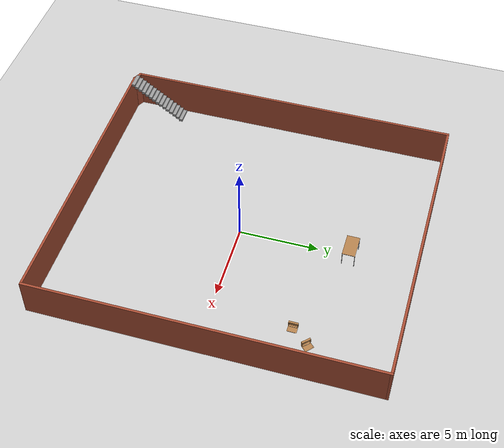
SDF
<sdf version="1.7">
 <world name="warehouse_world">
  <plugin name="gazebo_link_attacher" filename="libgazebo_link_attacher.so"/>
  <physics type="ode">
   <max_step_size>0.001</max_step_size>
   <real_time_factor>1</real_time_factor>
   <real_time_update_rate>1000</real_time_update_rate>
  </physics>
  <light name="sun" type="directional">
   <pose>0 0 10 0 -0 0</pose>
   <diffuse>0.8 0.8 0.8 1</diffuse>
   <specular>0.2 0.2 0.2 1</specular>
   <attenuation>
    <range>1000</range>
    <constant>0.9</constant>
    <linear>0.01</linear>
    <quadratic>0.001</quadratic>
   </attenuation>
   <direction>-0.5 0.1 -0.9</direction>
   <spot><inner_angle>0</inner_angle><outer_angle>0</outer_angle><falloff>0</falloff></spot>
  </light>
  <model name="ground_plane">
   <static>1</static>
   <link name="link">
    <collision name="collision">
     <geometry><plane><normal>0 0 1</normal><size>100 100</size></plane></geometry>
     <surface><friction><ode><mu>100</mu><mu2>50</mu2></ode></friction></surface>
    </collision>
    <visual name="visual">
     <cast_shadows>0</cast_shadows>
     <geometry><plane><normal>0 0 1</normal><size>100 100</size></plane></geometry>
     <material>
      <script><uri>file://media/materials/scripts/gazebo.material</uri><name>Gazebo/Grey</name></script>
     </material>
    </visual>
   </link>
  </model>
  <model name="workstation">
   <static>1</static>
   <link name="link">
    <collision name="surface">
     <pose>0 0 1 0 -0 0</pose>
     <geometry><box><size>1.5 0.8 0.03</size></box></geometry>
     <surface><friction><ode><mu>0.6</mu><mu2>0.6</mu2></ode></friction></surface>
    </collision>
    <visual name="visual1">
     <pose>0 0 1 0 -0 0</pose>
     <geometry><box><size>1.5 0.8 0.03</size></box></geometry>
     <material>
      <script><uri>file://media/materials/scripts/gazebo.material</uri><name>Gazebo/Wood</name></script>
     </material>
    </visual>
    <collision name="front_left_leg">
     <pose>0.68 0.38 0.5 0 -0 0</pose>
     <geometry><cylinder><radius>0.02</radius><length>1</length></cylinder></geometry>
    </collision>
    <visual name="front_left_leg">
     <pose>0.68 0.38 0.5 0 -0 0</pose>
     <geometry><cylinder><radius>0.02</radius><length>1</length></cylinder></geometry>
     <material>
      <script><uri>file://media/materials/scripts/gazebo.material</uri><name>Gazebo/Grey</name></script>
     </material>
    </visual>
    <collision name="front_right_leg">
     <pose>0.68 -0.38 0.5 0 -0 0</pose>
     <geometry><cylinder><radius>0.02</radius><length>1</length></cylinder></geometry>
    </collision>
    <visual name="front_right_leg">
     <pose>0.68 -0.38 0.5 0 -0 0</pose>
     <geometry><cylinder><radius>0.02</radius><length>1</length></cylinder></geometry>
     <material>
      <script><uri>file://media/materials/scripts/gazebo.material</uri><name>Gazebo/Grey</name></script>
     </material>
    </visual>
    <collision name="back_right_leg">
     <pose>-0.68 -0.38 0.5 0 -0 0</pose>
     <geometry><cylinder><radius>0.02</radius><length>1</length></cylinder></geometry>
    </collision>
    <visual name="back_right_leg">
     <pose>-0.68 -0.38 0.5 0 -0 0</pose>
     <geometry><cylinder><radius>0.02</radius><length>1</length></cylinder></geometry>
     <material>
      <script><uri>file://media/materials/scripts/gazebo.material</uri><name>Gazebo/Grey</name></script>
     </material>
    </visual>
    <collision name="back_left_leg">
     <pose>-0.68 0.38 0.5 0 -0 0</pose>
     <geometry><cylinder><radius>0.02</radius><length>1</length></cylinder></geometry>
    </collision>
    <visual name="back_left_leg">
     <pose>-0.68 0.38 0.5 0 -0 0</pose>
     <geometry><cylinder><radius>0.02</radius><length>1</length></cylinder></geometry>
     <material>
      <script><uri>file://media/materials/scripts/gazebo.material</uri><name>Gazebo/Grey</name></script>
     </material>
    </visual>
   </link>
   <pose>0 7 0 0 -0 0</pose>
  </model>
  <model name="case1">
   <link name="base">
    <pose>0 0 0.024 0 -0 0</pose>
    <inertial>
     <pose>-0.022184 0 0.171592 0 -0 0</pose>
     <mass>3.96264</mass>
     <inertia>
      <ixx>0.213536</ixx>
      <ixy>0</ixy>
      <ixz>0.000779377</ixz>
      <iyy>0.0708943</iyy>
      <iyz>0</iyz>
      <izz>0.154604</izz>
     </inertia>
    </inertial>
    <collision name="collision_back">
     <pose>-0.053975 0 0.1778 0 -0 0</pose>
     <geometry><box><size>0.01905 0.5461 0.3175</size></box></geometry>
     <surface>
      <contact>
       <poissons_ratio>0.347</poissons_ratio>
       <elastic_modulus>8.8e+09</elastic_modulus>
       <ode><kp>100000</kp><kd>100</kd><max_vel>100</max_vel><min_depth>0.001</min_depth></ode>
      </contact>
      <friction>
       <torsional>
        <coefficient>1</coefficient>
        <use_patch_radius>0</use_patch_radius>
        <surface_radius>0.01</surface_radius>
       </torsional>
      </friction>
     </surface>
    </collision>
    <visual name="visual_back">
     <pose>-0.053975 0 0.1778 0 -0 0</pose>
     <geometry><box><size>0.01905 0.5461 0.3175</size></box></geometry>
     <material>
      <script><uri>file://media/materials/scripts/gazebo.material</uri><name>Gazebo/Wood</name></script>
     </material>
    </visual>
    <collision name="collision_bottom">
     <pose>0 0 0.009525 0 -0 0</pose>
     <geometry><box><size>0.127 0.5842 0.01905</size></box></geometry>
     <surface>
      <contact>
       <poissons_ratio>0.347</poissons_ratio>
       <elastic_modulus>8.8e+09</elastic_modulus>
       <ode><kp>100000</kp><kd>100</kd><max_vel>100</max_vel><min_depth>0.001</min_depth></ode>
      </contact>
      <friction>
       <torsional>
        <coefficient>1</coefficient>
        <use_patch_radius>0</use_patch_radius>
        <surface_radius>0.01</surface_radius>
       </torsional>
      </friction>
     </surface>
    </collision>
    <visual name="visual_bottom">
     <pose>0 0 0.009525 0 -0 0</pose>
     <geometry><box><size>0.127 0.5842 0.01905</size></box></geometry>
     <material>
      <script><uri>file://media/materials/scripts/gazebo.material</uri><name>Gazebo/Wood</name></script>
     </material>
    </visual>
    <collision name="collision_top">
     <pose>0 0 0.346075 0 -0 0</pose>
     <geometry><box><size>0.127 0.5842 0.01905</size></box></geometry>
     <surface>
      <contact>
       <poissons_ratio>0.347</poissons_ratio>
       <elastic_modulus>8.8e+09</elastic_modulus>
       <ode><kp>100000</kp><kd>100</kd><max_vel>100</max_vel><min_depth>0.001</min_depth></ode>
      </contact>
      <friction>
       <torsional>
        <coefficient>1</coefficient>
        <use_patch_radius>0</use_patch_radius>
        <surface_radius>0.01</surface_radius>
       </torsional>
      </friction>
     </surface>
    </collision>
    <visual name="visual_top">
     <pose>0 0 0.346075 0 -0 0</pose>
     <geometry><box><size>0.127 0.5842 0.01905</size></box></geometry>
     <material>
      <script><uri>file://media/materials/scripts/gazebo.material</uri><name>Gazebo/Wood</name></script>
     </material>
    </visual>
    <collision name="collision_left">
     <pose>0 -0.282575 0.1778 0 -0 0</pose>
     <geometry><box><size>0.127 0.01905 0.3175</size></box></geometry>
     <surface>
      <contact>
       <poissons_ratio>0.347</poissons_ratio>
       <elastic_modulus>8.8e+09</elastic_modulus>
       <ode><kp>100000</kp><kd>100</kd><max_vel>100</max_vel><min_depth>0.001</min_depth></ode>
      </contact>
      <friction>
       <torsional>
        <coefficient>1</coefficient>
        <use_patch_radius>0</use_patch_radius>
        <surface_radius>0.01</surface_radius>
       </torsional>
      </friction>
     </surface>
    </collision>
    <visual name="visual_left">
     <pose>0 -0.282575 0.1778 0 -0 0</pose>
     <geometry><box><size>0.127 0.01905 0.3175</size></box></geometry>
     <material>
      <script><uri>file://media/materials/scripts/gazebo.material</uri><name>Gazebo/Wood</name></script>
     </material>
    </visual>
    <collision name="collision_right">
     <pose>0 0.282575 0.1778 0 -0 0</pose>
     <geometry><box><size>0.127 0.01905 0.3175</size></box></geometry>
     <surface>
      <contact>
       <poissons_ratio>0.347</poissons_ratio>
       <elastic_modulus>8.8e+09</elastic_modulus>
       <ode><kp>100000</kp><kd>100</kd><max_vel>100</max_vel><min_depth>0.001</min_depth></ode>
      </contact>
      <friction>
       <torsional>
        <coefficient>1</coefficient>
        <use_patch_radius>0</use_patch_radius>
        <surface_radius>0.01</surface_radius>
       </torsional>
      </friction>
     </surface>
    </collision>
    <visual name="visual_right">
     <pose>0 0.282575 0.1778 0 -0 0</pose>
     <geometry><box><size>0.127 0.01905 0.3175</size></box></geometry>
     <material>
      <script><uri>file://media/materials/scripts/gazebo.material</uri><name>Gazebo/Wood</name></script>
     </material>
    </visual>
    <collision name="collision_block_left">
     <pose>0.0095 -0.2151 -0.012 0 -0 0</pose>
     <geometry><box><size>0.108 0.05 0.024</size></box></geometry>
     <surface>
      <contact>
       <poissons_ratio>0.347</poissons_ratio>
       <elastic_modulus>8.8e+09</elastic_modulus>
       <ode><kp>100000</kp><kd>100</kd><max_vel>100</max_vel><min_depth>0.001</min_depth></ode>
      </contact>
      <friction>
       <torsional>
        <coefficient>1</coefficient>
        <use_patch_radius>0</use_patch_radius>
        <surface_radius>0.01</surface_radius>
       </torsional>
      </friction>
     </surface>
    </collision>
    <visual name="visual_block_left">
     <pose>0.0095 -0.2151 -0.012 0 -0 0</pose>
     <geometry><box><size>0.108 0.05 0.024</size></box></geometry>
     <material>
      <script><uri>file://media/materials/scripts/gazebo.material</uri><name>Gazebo/Wood</name></script>
     </material>
    </visual>
    <collision name="collision_block_right">
     <pose>0.0095 0.2151 -0.012 0 -0 0</pose>
     <geometry><box><size>0.108 0.05 0.024</size></box></geometry>
     <surface>
      <contact>
       <poissons_ratio>0.347</poissons_ratio>
       <elastic_modulus>8.8e+09</elastic_modulus>
       <ode><kp>100000</kp><kd>100</kd><max_vel>100</max_vel><min_depth>0.001</min_depth></ode>
      </contact>
      <friction>
       <torsional>
        <coefficient>1</coefficient>
        <use_patch_radius>0</use_patch_radius>
        <surface_radius>0.01</surface_radius>
       </torsional>
      </friction>
     </surface>
    </collision>
    <visual name="visual_block_right">
     <pose>0.0095 0.2151 -0.012 0 -0 0</pose>
     <geometry><box><size>0.108 0.05 0.024</size></box></geometry>
     <material>
      <script><uri>file://media/materials/scripts/gazebo.material</uri><name>Gazebo/Wood</name></script>
     </material>
    </visual>
   </link>
   <link name="lid">
    <pose>0.243775 0 0.009525 0 -0 0</pose>
    <inertial>
     <mass>1.97874</mass>
     <inertia>
      <ixx>0.0563367</ixx>
      <ixy>0</ixy>
      <ixz>0</ixz>
      <iyy>0.020911</iyy>
      <iyz>0</iyz>
      <izz>0.0771281</izz>
     </inertia>
    </inertial>
    <collision name="collision">
     <geometry><box><size>0.3556 0.5842 0.01905</size></box></geometry>
     <surface>
      <contact>
       <poissons_ratio>0.347</poissons_ratio>
       <elastic_modulus>8.8e+09</elastic_modulus>
       <ode><kp>100000</kp><kd>100</kd><max_vel>100</max_vel><min_depth>0.001</min_depth></ode>
      </contact>
      <friction>
       <torsional>
        <coefficient>1</coefficient>
        <use_patch_radius>0</use_patch_radius>
        <surface_radius>0.01</surface_radius>
       </torsional>
      </friction>
     </surface>
    </collision>
    <visual name="visual">
     <geometry><box><size>0.3556 0.5842 0.01905</size></box></geometry>
     <material>
      <script><uri>file://media/materials/scripts/gazebo.material</uri><name>Gazebo/Wood</name></script>
     </material>
    </visual>
    <visual name="tee_nut_1">
     <pose>0.122 -0.216 0 0 -0 0</pose>
     <geometry><cylinder><radius>0.00635</radius><length>0.0192405</length></cylinder></geometry>
     <material>
      <script><uri>file://media/materials/scripts/gazebo.material</uri><name>Gazebo/Grey</name></script>
     </material>
    </visual>
    <visual name="tee_nut_2">
     <pose>0.122 -0.088 0 0 -0 0</pose>
     <geometry><cylinder><radius>0.00635</radius><length>0.0192405</length></cylinder></geometry>
     <material>
      <script><uri>file://media/materials/scripts/gazebo.material</uri><name>Gazebo/Grey</name></script>
     </material>
    </visual>
    <visual name="tee_nut_3">
     <pose>0.122 0.088 0 0 -0 0</pose>
     <geometry><cylinder><radius>0.00635</radius><length>0.0192405</length></cylinder></geometry>
     <material>
      <script><uri>file://media/materials/scripts/gazebo.material</uri><name>Gazebo/Grey</name></script>
     </material>
    </visual>
    <visual name="tee_nut_4">
     <pose>0.122 0.216 0 0 -0 0</pose>
     <geometry><cylinder><radius>0.00635</radius><length>0.0192405</length></cylinder></geometry>
     <material>
      <script><uri>file://media/materials/scripts/gazebo.material</uri><name>Gazebo/Grey</name></script>
     </material>
    </visual>
   </link>
   <joint name="lid_hinge" type="revolute">
    <pose>-0.1778 0 0.01905 0 -0 0</pose>
    <parent>base</parent>
    <child>lid</child>
    <axis>
     <xyz>0 1 0</xyz>
     <limit><upper>0.523599</upper><lower>-1.5708</lower></limit>
     <dynamics><spring_reference>0</spring_reference><spring_stiffness>0</spring_stiffness></dynamics>
    </axis>
   </joint>
   <pose>6 5 -0.001057 0 -0.000429 0</pose>
  </model>
  <model name="case2">
   <link name="base">
    <pose>0 0 0.024 0 -0 0</pose>
    <inertial>
     <pose>-0.022184 0 0.171592 0 -0 0</pose>
     <mass>3.96264</mass>
     <inertia>
      <ixx>0.213536</ixx>
      <ixy>0</ixy>
      <ixz>0.000779377</ixz>
      <iyy>0.0708943</iyy>
      <iyz>0</iyz>
      <izz>0.154604</izz>
     </inertia>
    </inertial>
    <collision name="collision_back">
     <pose>-0.053975 0 0.1778 0 -0 0</pose>
     <geometry><box><size>0.01905 0.5461 0.3175</size></box></geometry>
     <surface>
      <contact>
       <poissons_ratio>0.347</poissons_ratio>
       <elastic_modulus>8.8e+09</elastic_modulus>
       <ode><kp>100000</kp><kd>100</kd><max_vel>100</max_vel><min_depth>0.001</min_depth></ode>
      </contact>
      <friction>
       <torsional>
        <coefficient>1</coefficient>
        <use_patch_radius>0</use_patch_radius>
        <surface_radius>0.01</surface_radius>
       </torsional>
      </friction>
     </surface>
    </collision>
    <visual name="visual_back">
     <pose>-0.053975 0 0.1778 0 -0 0</pose>
     <geometry><box><size>0.01905 0.5461 0.3175</size></box></geometry>
     <material>
      <script><uri>file://media/materials/scripts/gazebo.material</uri><name>Gazebo/Wood</name></script>
     </material>
    </visual>
    <collision name="collision_bottom">
     <pose>0 0 0.009525 0 -0 0</pose>
     <geometry><box><size>0.127 0.5842 0.01905</size></box></geometry>
     <surface>
      <contact>
       <poissons_ratio>0.347</poissons_ratio>
       <elastic_modulus>8.8e+09</elastic_modulus>
       <ode><kp>100000</kp><kd>100</kd><max_vel>100</max_vel><min_depth>0.001</min_depth></ode>
      </contact>
      <friction>
       <torsional>
        <coefficient>1</coefficient>
        <use_patch_radius>0</use_patch_radius>
        <surface_radius>0.01</surface_radius>
       </torsional>
      </friction>
     </surface>
    </collision>
    <visual name="visual_bottom">
     <pose>0 0 0.009525 0 -0 0</pose>
     <geometry><box><size>0.127 0.5842 0.01905</size></box></geometry>
     <material>
      <script><uri>file://media/materials/scripts/gazebo.material</uri><name>Gazebo/Wood</name></script>
     </material>
    </visual>
    <collision name="collision_top">
     <pose>0 0 0.346075 0 -0 0</pose>
     <geometry><box><size>0.127 0.5842 0.01905</size></box></geometry>
     <surface>
      <contact>
       <poissons_ratio>0.347</poissons_ratio>
       <elastic_modulus>8.8e+09</elastic_modulus>
       <ode><kp>100000</kp><kd>100</kd><max_vel>100</max_vel><min_depth>0.001</min_depth></ode>
      </contact>
      <friction>
       <torsional>
        <coefficient>1</coefficient>
        <use_patch_radius>0</use_patch_radius>
        <surface_radius>0.01</surface_radius>
       </torsional>
      </friction>
     </surface>
    </collision>
    <visual name="visual_top">
     <pose>0 0 0.346075 0 -0 0</pose>
     <geometry><box><size>0.127 0.5842 0.01905</size></box></geometry>
     <material>
      <script><uri>file://media/materials/scripts/gazebo.material</uri><name>Gazebo/Wood</name></script>
     </material>
    </visual>
    <collision name="collision_left">
     <pose>0 -0.282575 0.1778 0 -0 0</pose>
     <geometry><box><size>0.127 0.01905 0.3175</size></box></geometry>
     <surface>
      <contact>
       <poissons_ratio>0.347</poissons_ratio>
       <elastic_modulus>8.8e+09</elastic_modulus>
       <ode><kp>100000</kp><kd>100</kd><max_vel>100</max_vel><min_depth>0.001</min_depth></ode>
      </contact>
      <friction>
       <torsional>
        <coefficient>1</coefficient>
        <use_patch_radius>0</use_patch_radius>
        <surface_radius>0.01</surface_radius>
       </torsional>
      </friction>
     </surface>
    </collision>
    <visual name="visual_left">
     <pose>0 -0.282575 0.1778 0 -0 0</pose>
     <geometry><box><size>0.127 0.01905 0.3175</size></box></geometry>
     <material>
      <script><uri>file://media/materials/scripts/gazebo.material</uri><name>Gazebo/Wood</name></script>
     </material>
    </visual>
    <collision name="collision_right">
     <pose>0 0.282575 0.1778 0 -0 0</pose>
     <geometry><box><size>0.127 0.01905 0.3175</size></box></geometry>
     <surface>
      <contact>
       <poissons_ratio>0.347</poissons_ratio>
       <elastic_modulus>8.8e+09</elastic_modulus>
       <ode><kp>100000</kp><kd>100</kd><max_vel>100</max_vel><min_depth>0.001</min_depth></ode>
      </contact>
      <friction>
       <torsional>
        <coefficient>1</coefficient>
        <use_patch_radius>0</use_patch_radius>
        <surface_radius>0.01</surface_radius>
       </torsional>
      </friction>
     </surface>
    </collision>
    <visual name="visual_right">
     <pose>0 0.282575 0.1778 0 -0 0</pose>
     <geometry><box><size>0.127 0.01905 0.3175</size></box></geometry>
     <material>
      <script><uri>file://media/materials/scripts/gazebo.material</uri><name>Gazebo/Wood</name></script>
     </material>
    </visual>
    <collision name="collision_block_left">
     <pose>0.0095 -0.2151 -0.012 0 -0 0</pose>
     <geometry><box><size>0.108 0.05 0.024</size></box></geometry>
     <surface>
      <contact>
       <poissons_ratio>0.347</poissons_ratio>
       <elastic_modulus>8.8e+09</elastic_modulus>
       <ode><kp>100000</kp><kd>100</kd><max_vel>100</max_vel><min_depth>0.001</min_depth></ode>
      </contact>
      <friction>
       <torsional>
        <coefficient>1</coefficient>
        <use_patch_radius>0</use_patch_radius>
        <surface_radius>0.01</surface_radius>
       </torsional>
      </friction>
     </surface>
    </collision>
    <visual name="visual_block_left">
     <pose>0.0095 -0.2151 -0.012 0 -0 0</pose>
     <geometry><box><size>0.108 0.05 0.024</size></box></geometry>
     <material>
      <script><uri>file://media/materials/scripts/gazebo.material</uri><name>Gazebo/Wood</name></script>
     </material>
    </visual>
    <collision name="collision_block_right">
     <pose>0.0095 0.2151 -0.012 0 -0 0</pose>
     <geometry><box><size>0.108 0.05 0.024</size></box></geometry>
     <surface>
      <contact>
       <poissons_ratio>0.347</poissons_ratio>
       <elastic_modulus>8.8e+09</elastic_modulus>
       <ode><kp>100000</kp><kd>100</kd><max_vel>100</max_vel><min_depth>0.001</min_depth></ode>
      </contact>
      <friction>
       <torsional>
        <coefficient>1</coefficient>
        <use_patch_radius>0</use_patch_radius>
        <surface_radius>0.01</surface_radius>
       </torsional>
      </friction>
     </surface>
    </collision>
    <visual name="visual_block_right">
     <pose>0.0095 0.2151 -0.012 0 -0 0</pose>
     <geometry><box><size>0.108 0.05 0.024</size></box></geometry>
     <material>
      <script><uri>file://media/materials/scripts/gazebo.material</uri><name>Gazebo/Wood</name></script>
     </material>
    </visual>
   </link>
   <link name="lid">
    <pose>0.243775 0 0.009525 0 -0 0</pose>
    <inertial>
     <mass>1.97874</mass>
     <inertia>
      <ixx>0.0563367</ixx>
      <ixy>0</ixy>
      <ixz>0</ixz>
      <iyy>0.020911</iyy>
      <iyz>0</iyz>
      <izz>0.0771281</izz>
     </inertia>
    </inertial>
    <collision name="collision">
     <geometry><box><size>0.3556 0.5842 0.01905</size></box></geometry>
     <surface>
      <contact>
       <poissons_ratio>0.347</poissons_ratio>
       <elastic_modulus>8.8e+09</elastic_modulus>
       <ode><kp>100000</kp><kd>100</kd><max_vel>100</max_vel><min_depth>0.001</min_depth></ode>
      </contact>
      <friction>
       <torsional>
        <coefficient>1</coefficient>
        <use_patch_radius>0</use_patch_radius>
        <surface_radius>0.01</surface_radius>
       </torsional>
      </friction>
     </surface>
    </collision>
    <visual name="visual">
     <geometry><box><size>0.3556 0.5842 0.01905</size></box></geometry>
     <material>
      <script><uri>file://media/materials/scripts/gazebo.material</uri><name>Gazebo/Wood</name></script>
     </material>
    </visual>
    <visual name="tee_nut_1">
     <pose>0.122 -0.216 0 0 -0 0</pose>
     <geometry><cylinder><radius>0.00635</radius><length>0.0192405</length></cylinder></geometry>
     <material>
      <script><uri>file://media/materials/scripts/gazebo.material</uri><name>Gazebo/Grey</name></script>
     </material>
    </visual>
    <visual name="tee_nut_2">
     <pose>0.122 -0.088 0 0 -0 0</pose>
     <geometry><cylinder><radius>0.00635</radius><length>0.0192405</length></cylinder></geometry>
     <material>
      <script><uri>file://media/materials/scripts/gazebo.material</uri><name>Gazebo/Grey</name></script>
     </material>
    </visual>
    <visual name="tee_nut_3">
     <pose>0.122 0.088 0 0 -0 0</pose>
     <geometry><cylinder><radius>0.00635</radius><length>0.0192405</length></cylinder></geometry>
     <material>
      <script><uri>file://media/materials/scripts/gazebo.material</uri><name>Gazebo/Grey</name></script>
     </material>
    </visual>
    <visual name="tee_nut_4">
     <pose>0.122 0.216 0 0 -0 0</pose>
     <geometry><cylinder><radius>0.00635</radius><length>0.0192405</length></cylinder></geometry>
     <material>
      <script><uri>file://media/materials/scripts/gazebo.material</uri><name>Gazebo/Grey</name></script>
     </material>
    </visual>
   </link>
   <joint name="lid_hinge" type="revolute">
    <pose>-0.1778 0 0.01905 0 -0 0</pose>
    <parent>base</parent>
    <child>lid</child>
    <axis>
     <xyz>0 1 0</xyz>
     <limit><upper>0.523599</upper><lower>-1.5708</lower></limit>
     <dynamics><spring_reference>0</spring_reference><spring_stiffness>0</spring_stiffness></dynamics>
    </axis>
   </joint>
   <pose>7 6 -0.001056 0 -0.000379 0.800001</pose>
  </model>
  <light name="warehouse_light1" type="point">
   <pose>-5 0 4 0 -0 0</pose>
   <diffuse>0.8 0.8 0.8 1</diffuse>
   <specular>0.2 0.2 0.2 1</specular>
   <attenuation>
    <range>20</range>
    <linear>0.01</linear>
    <constant>0.9</constant>
    <quadratic>0.001</quadratic>
   </attenuation>
   <direction>0 0 -1</direction>
   <spot><inner_angle>0</inner_angle><outer_angle>0</outer_angle><falloff>0</falloff></spot>
  </light>
  <light name="warehouse_light2" type="point">
   <pose>5 0 4 0 -0 0</pose>
   <diffuse>0.8 0.8 0.8 1</diffuse>
   <specular>0.2 0.2 0.2 1</specular>
   <attenuation>
    <range>20</range>
    <linear>0.01</linear>
    <constant>0.9</constant>
    <quadratic>0.001</quadratic>
   </attenuation>
   <direction>0 0 -1</direction>
   <spot><inner_angle>0</inner_angle><outer_angle>0</outer_angle><falloff>0</falloff></spot>
  </light>
  <scene><ambient>0.4 0.4 0.4 1</ambient><background>0.7 0.7 0.7 1</background><shadows>1</shadows></scene>
  <gravity>0 0 -9.8</gravity>
  <magnetic_field>6e-06 2.3e-05 -4.2e-05</magnetic_field>
  <atmosphere type="adiabatic"/>
  <audio><device>default</device></audio>
  <spherical_coordinates>
   <surface_model>EARTH_WGS84</surface_model>
   <latitude_deg>0</latitude_deg>
   <longitude_deg>0</longitude_deg>
   <elevation>0</elevation>
   <heading_deg>0</heading_deg>
  </spherical_coordinates>
  <model name="Untitled">
   <pose>-0.240199 0.446248 0 0 -0 0</pose>
   <link name="Stairs_0">
    <visual name="Stairs_0_Visual_0">
     <pose>-8.7142 -7.23135 0.083333 0 -0 0</pose>
     <geometry><box><size>1 0.233333 0.166667</size></box></geometry>
     <material>
      <script><uri>file://media/materials/scripts/gazebo.material</uri><name>Gazebo/Grey</name></script>
      <ambient>1 1 1 1</ambient>
     </material>
     <meta><layer>0</layer></meta>
    </visual>
    <collision name="Stairs_0_Collision_0">
     <geometry><box><size>1 0.233333 0.166667</size></box></geometry>
     <pose>-8.7142 -7.23135 0.083333 0 -0 0</pose>
    </collision>
    <visual name="Stairs_0_Visual_1">
     <pose>-8.7142 -7.46469 0.25 0 -0 0</pose>
     <geometry><box><size>1 0.233333 0.166667</size></box></geometry>
     <material>
      <script><uri>file://media/materials/scripts/gazebo.material</uri><name>Gazebo/Grey</name></script>
      <ambient>1 1 1 1</ambient>
     </material>
     <meta><layer>0</layer></meta>
    </visual>
    <collision name="Stairs_0_Collision_1">
     <geometry><box><size>1 0.233333 0.166667</size></box></geometry>
     <pose>-8.7142 -7.46469 0.25 0 -0 0</pose>
    </collision>
    <visual name="Stairs_0_Visual_2">
     <pose>-8.7142 -7.69802 0.416667 0 -0 0</pose>
     <geometry><box><size>1 0.233333 0.166667</size></box></geometry>
     <material>
      <script><uri>file://media/materials/scripts/gazebo.material</uri><name>Gazebo/Grey</name></script>
      <ambient>1 1 1 1</ambient>
     </material>
     <meta><layer>0</layer></meta>
    </visual>
    <collision name="Stairs_0_Collision_2">
     <geometry><box><size>1 0.233333 0.166667</size></box></geometry>
     <pose>-8.7142 -7.69802 0.416667 0 -0 0</pose>
    </collision>
    <visual name="Stairs_0_Visual_3">
     <pose>-8.7142 -7.93135 0.583333 0 -0 0</pose>
     <geometry><box><size>1 0.233333 0.166667</size></box></geometry>
     <material>
      <script><uri>file://media/materials/scripts/gazebo.material</uri><name>Gazebo/Grey</name></script>
      <ambient>1 1 1 1</ambient>
     </material>
     <meta><layer>0</layer></meta>
    </visual>
    <collision name="Stairs_0_Collision_3">
     <geometry><box><size>1 0.233333 0.166667</size></box></geometry>
     <pose>-8.7142 -7.93135 0.583333 0 -0 0</pose>
    </collision>
    <visual name="Stairs_0_Visual_4">
     <pose>-8.7142 -8.16469 0.75 0 -0 0</pose>
     <geometry><box><size>1 0.233333 0.166667</size></box></geometry>
     <material>
      <script><uri>file://media/materials/scripts/gazebo.material</uri><name>Gazebo/Grey</name></script>
      <ambient>1 1 1 1</ambient>
     </material>
     <meta><layer>0</layer></meta>
    </visual>
    <collision name="Stairs_0_Collision_4">
     <geometry><box><size>1 0.233333 0.166667</size></box></geometry>
     <pose>-8.7142 -8.16469 0.75 0 -0 0</pose>
    </collision>
    <visual name="Stairs_0_Visual_5">
     <pose>-8.7142 -8.39802 0.916667 0 -0 0</pose>
     <geometry><box><size>1 0.233333 0.166667</size></box></geometry>
     <material>
      <script><uri>file://media/materials/scripts/gazebo.material</uri><name>Gazebo/Grey</name></script>
      <ambient>1 1 1 1</ambient>
     </material>
     <meta><layer>0</layer></meta>
    </visual>
    <collision name="Stairs_0_Collision_5">
     <geometry><box><size>1 0.233333 0.166667</size></box></geometry>
     <pose>-8.7142 -8.39802 0.916667 0 -0 0</pose>
    </collision>
    <visual name="Stairs_0_Visual_6">
     <pose>-8.7142 -8.63135 1.08333 0 -0 0</pose>
     <geometry><box><size>1 0.233333 0.166667</size></box></geometry>
     <material>
      <script><uri>file://media/materials/scripts/gazebo.material</uri><name>Gazebo/Grey</name></script>
      <ambient>1 1 1 1</ambient>
     </material>
     <meta><layer>0</layer></meta>
    </visual>
    <collision name="Stairs_0_Collision_6">
     <geometry><box><size>1 0.233333 0.166667</size></box></geometry>
     <pose>-8.7142 -8.63135 1.08333 0 -0 0</pose>
    </collision>
    <visual name="Stairs_0_Visual_7">
     <pose>-8.7142 -8.86469 1.25 0 -0 0</pose>
     <geometry><box><size>1 0.233333 0.166667</size></box></geometry>
     <material>
      <script><uri>file://media/materials/scripts/gazebo.material</uri><name>Gazebo/Grey</name></script>
      <ambient>1 1 1 1</ambient>
     </material>
     <meta><layer>0</layer></meta>
    </visual>
    <collision name="Stairs_0_Collision_7">
     <geometry><box><size>1 0.233333 0.166667</size></box></geometry>
     <pose>-8.7142 -8.86469 1.25 0 -0 0</pose>
    </collision>
    <visual name="Stairs_0_Visual_8">
     <pose>-8.7142 -9.09802 1.41667 0 -0 0</pose>
     <geometry><box><size>1 0.233333 0.166667</size></box></geometry>
     <material>
      <script><uri>file://media/materials/scripts/gazebo.material</uri><name>Gazebo/Grey</name></script>
      <ambient>1 1 1 1</ambient>
     </material>
     <meta><layer>0</layer></meta>
    </visual>
    <collision name="Stairs_0_Collision_8">
     <geometry><box><size>1 0.233333 0.166667</size></box></geometry>
     <pose>-8.7142 -9.09802 1.41667 0 -0 0</pose>
    </collision>
    <visual name="Stairs_0_Visual_9">
     <pose>-8.7142 -9.33136 1.58333 0 -0 0</pose>
     <geometry><box><size>1 0.233333 0.166667</size></box></geometry>
     <material>
      <script><uri>file://media/materials/scripts/gazebo.material</uri><name>Gazebo/Grey</name></script>
      <ambient>1 1 1 1</ambient>
     </material>
     <meta><layer>0</layer></meta>
    </visual>
    <collision name="Stairs_0_Collision_9">
     <geometry><box><size>1 0.233333 0.166667</size></box></geometry>
     <pose>-8.7142 -9.33136 1.58333 0 -0 0</pose>
    </collision>
    <visual name="Stairs_0_Visual_10">
     <pose>-8.7142 -9.56469 1.75 0 -0 0</pose>
     <geometry><box><size>1 0.233333 0.166667</size></box></geometry>
     <material>
      <script><uri>file://media/materials/scripts/gazebo.material</uri><name>Gazebo/Grey</name></script>
      <ambient>1 1 1 1</ambient>
     </material>
     <meta><layer>0</layer></meta>
    </visual>
    <collision name="Stairs_0_Collision_10">
     <geometry><box><size>1 0.233333 0.166667</size></box></geometry>
     <pose>-8.7142 -9.56469 1.75 0 -0 0</pose>
    </collision>
    <visual name="Stairs_0_Visual_11">
     <pose>-8.7142 -9.79802 1.91667 0 -0 0</pose>
     <geometry><box><size>1 0.233333 0.166667</size></box></geometry>
     <material>
      <script><uri>file://media/materials/scripts/gazebo.material</uri><name>Gazebo/Grey</name></script>
      <ambient>1 1 1 1</ambient>
     </material>
     <meta><layer>0</layer></meta>
    </visual>
    <collision name="Stairs_0_Collision_11">
     <geometry><box><size>1 0.233333 0.166667</size></box></geometry>
     <pose>-8.7142 -9.79802 1.91667 0 -0 0</pose>
    </collision>
    <visual name="Stairs_0_Visual_12">
     <pose>-8.7142 -10.0314 2.08333 0 -0 0</pose>
     <geometry><box><size>1 0.233333 0.166667</size></box></geometry>
     <material>
      <script><uri>file://media/materials/scripts/gazebo.material</uri><name>Gazebo/Grey</name></script>
      <ambient>1 1 1 1</ambient>
     </material>
     <meta><layer>0</layer></meta>
    </visual>
    <collision name="Stairs_0_Collision_12">
     <geometry><box><size>1 0.233333 0.166667</size></box></geometry>
     <pose>-8.7142 -10.0314 2.08333 0 -0 0</pose>
    </collision>
    <visual name="Stairs_0_Visual_13">
     <pose>-8.7142 -10.2647 2.25 0 -0 0</pose>
     <geometry><box><size>1 0.233333 0.166667</size></box></geometry>
     <material>
      <script><uri>file://media/materials/scripts/gazebo.material</uri><name>Gazebo/Grey</name></script>
      <ambient>1 1 1 1</ambient>
     </material>
     <meta><layer>0</layer></meta>
    </visual>
    <collision name="Stairs_0_Collision_13">
     <geometry><box><size>1 0.233333 0.166667</size></box></geometry>
     <pose>-8.7142 -10.2647 2.25 0 -0 0</pose>
    </collision>
    <visual name="Stairs_0_Visual_14">
     <pose>-8.7142 -10.498 2.41667 0 -0 0</pose>
     <geometry><box><size>1 0.233333 0.166667</size></box></geometry>
     <material>
      <script><uri>file://media/materials/scripts/gazebo.material</uri><name>Gazebo/Grey</name></script>
      <ambient>1 1 1 1</ambient>
     </material>
     <meta><layer>0</layer></meta>
    </visual>
    <collision name="Stairs_0_Collision_14">
     <geometry><box><size>1 0.233333 0.166667</size></box></geometry>
     <pose>-8.7142 -10.498 2.41667 0 -0 0</pose>
    </collision>
   </link>
   <link name="Wall_10">
    <collision name="Wall_10_Collision">
     <geometry><box><size>19 0.15 2.5</size></box></geometry>
     <pose>0 0 1.25 0 -0 0</pose>
    </collision>
    <visual name="Wall_10_Visual">
     <pose>0 0 1.25 0 -0 0</pose>
     <geometry><box><size>19 0.15 2.5</size></box></geometry>
     <material>
      <script><uri>file://media/materials/scripts/gazebo.material</uri><name>Gazebo/Bricks</name></script>
      <ambient>1 1 1 1</ambient>
     </material>
     <meta><layer>0</layer></meta>
    </visual>
    <pose>0.01281 10.6878 0 0 -0 3.14159</pose>
   </link>
   <link name="Wall_12">
    <collision name="Wall_12_Collision">
     <geometry><box><size>21.25 0.15 2.5</size></box></geometry>
     <pose>0 0 1.25 0 -0 0</pose>
    </collision>
    <visual name="Wall_12_Visual">
     <pose>0 0 1.25 0 -0 0</pose>
     <geometry><box><size>21.25 0.15 2.5</size></box></geometry>
     <material>
      <script><uri>file://media/materials/scripts/gazebo.material</uri><name>Gazebo/Bricks</name></script>
      <ambient>1 1 1 1</ambient>
     </material>
     <meta><layer>0</layer></meta>
    </visual>
    <pose>-9.41219 0.137811 0 0 -0 -1.5708</pose>
   </link>
   <link name="Wall_13">
    <collision name="Wall_13_Collision">
     <geometry><box><size>0.709017 0.15 2.5</size></box></geometry>
     <pose>0 0 1.25 0 -0 0</pose>
    </collision>
    <visual name="Wall_13_Visual">
     <pose>0 0 1.25 0 -0 0</pose>
     <geometry><box><size>0.709017 0.15 2.5</size></box></geometry>
     <material>
      <script><uri>file://media/materials/scripts/gazebo.material</uri><name>Gazebo/Bricks</name></script>
      <ambient>1 1 1 1</ambient>
     </material>
     <meta><layer>0</layer></meta>
    </visual>
    <pose>-9.16219 -10.5372 0 0 -0 -0.463648</pose>
   </link>
   <link name="Wall_8">
    <collision name="Wall_8_Collision">
     <geometry><box><size>18.5 0.15 2.5</size></box></geometry>
     <pose>0 0 1.25 0 -0 0</pose>
    </collision>
    <visual name="Wall_8_Visual">
     <pose>0 0 1.25 0 -0 0</pose>
     <geometry><box><size>18.5 0.15 2.5</size></box></geometry>
     <material>
      <script><uri>file://media/materials/scripts/gazebo.material</uri><name>Gazebo/Bricks</name></script>
      <ambient>1 1 1 1</ambient>
     </material>
     <meta><layer>0</layer></meta>
    </visual>
    <pose>0.26281 -10.6622 0 0 -0 0</pose>
   </link>
   <link name="Wall_9">
    <collision name="Wall_9_Collision">
     <geometry><box><size>21.5 0.15 2.5</size></box></geometry>
     <pose>0 0 1.25 0 -0 0</pose>
    </collision>
    <visual name="Wall_9_Visual">
     <pose>0 0 1.25 0 -0 0</pose>
     <geometry><box><size>21.5 0.15 2.5</size></box></geometry>
     <material>
      <script><uri>file://media/materials/scripts/gazebo.material</uri><name>Gazebo/Bricks</name></script>
      <ambient>1 1 1 1</ambient>
     </material>
     <meta><layer>0</layer></meta>
    </visual>
    <pose>9.43781 0.012811 0 0 -0 1.5708</pose>
   </link>
   <static>1</static>
  </model>
 </world>
</sdf>
